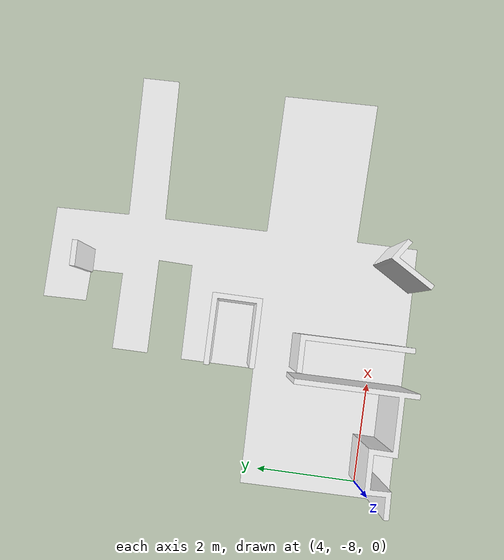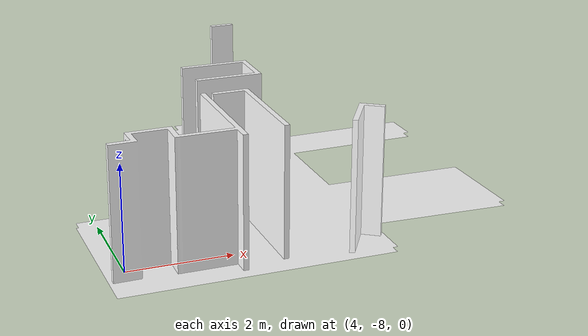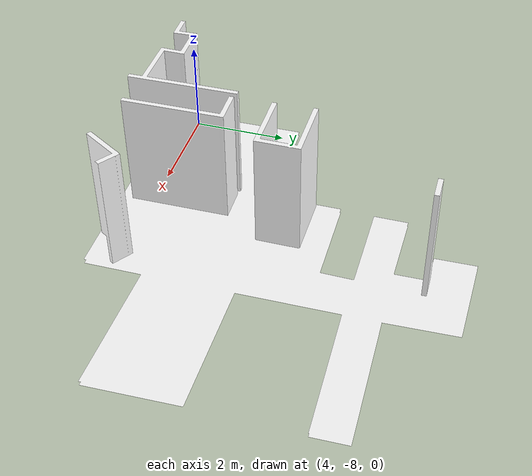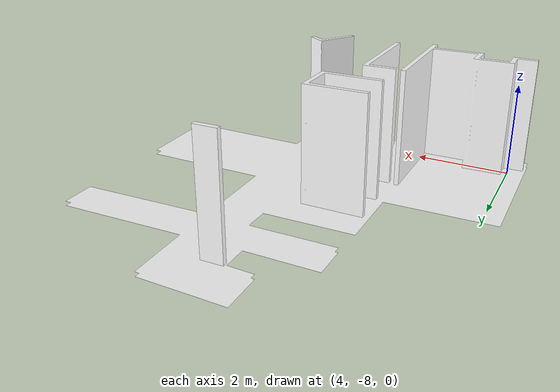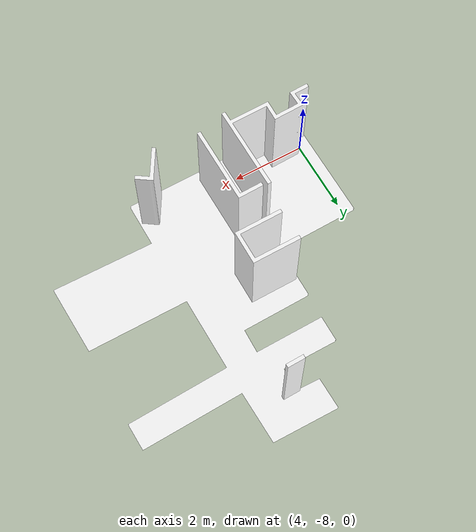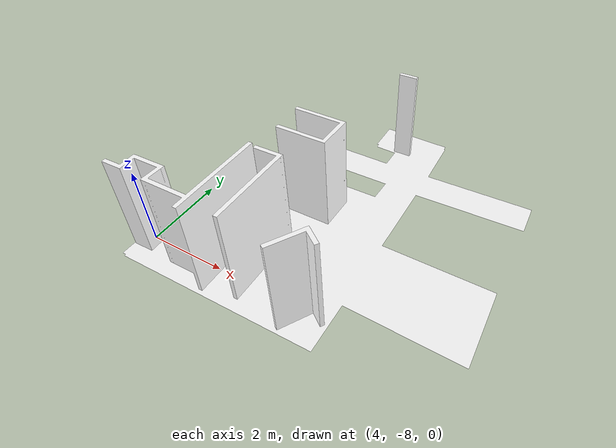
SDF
<sdf version="1.7">
  <world name="kachaka-youtalk">
    <scene>
      <ambient>0.8 0.8 0.8 1.0</ambient>
      <background>0 0 0</background>
      <grid>false</grid>
    </scene>
    <gui>
      <camera name="gui_camera">
        <pose>7.69876620071453 -24.95337946478548 10 0 0.6 1.57</pose>
      </camera>
      <plugin name="toggle_charging" filename="libtoggle_charging.so" />
      <plugin name="toggle_floors" filename="libtoggle_floors.so">
        <floor name="youtalk" model_name="kachaka-youtalk_youtalk" />
      </plugin>
    </gui>
    <include>
      <name>kachaka-youtalk_youtalk</name>
      <uri>model://kachaka-youtalk_youtalk</uri>
      <pose>0 0 0.0 0 0 0</pose>
    </include>
    <rmf_charger_waypoints name="charger_waypoints">
      <rmf_vertex name="Charger" x="7.672877544187198" y="-2.395753616723083" level="youtalk" />
    </rmf_charger_waypoints>
  </world>
</sdf>

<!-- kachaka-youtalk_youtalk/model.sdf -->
<sdf version="1.7">
  <model name="kachaka-youtalk_youtalk">
    <static>true</static>
    <link name="floor_1">
      <visual name="visual">
        <geometry>
          <mesh>
            <uri>model://kachaka-youtalk_youtalk/meshes/floor_1.obj</uri>
          </mesh>
        </geometry>
        <material>
          <diffuse>1.0 1.0 1.0</diffuse>
          <specular>0.1 0.1 0.1</specular>
          <pbr>
            <metal>
              <metalness>0.0</metalness>
              <albedo_map>model://kachaka-youtalk_youtalk/meshes/blue_linoleum.png</albedo_map>
            </metal>
          </pbr>
          <script>
            <uri>model://kachaka-youtalk_youtalk/meshes/</uri>
            <name>floor_1_Diffuse</name>
          </script>
        </material>
      </visual>
      <collision name="collision">
        <geometry>
          <mesh>
            <uri>model://kachaka-youtalk_youtalk/meshes/floor_1.obj</uri>
          </mesh>
        </geometry>
        <surface>
          <contact>
            <collide_bitmask>0x01</collide_bitmask>
          </contact>
        </surface>
      </collision>
    </link>
    <link name="wall_1">
      <visual name="wall_1">
        <geometry>
          <mesh>
            <uri>model://kachaka-youtalk_youtalk/meshes/wall_1.obj</uri>
          </mesh>
        </geometry>
        <transparency>0.0</transparency>
        <material>
          <diffuse>1.0 1.0 1.0</diffuse>
          <specular>0.1 0.1 0.1</specular>
          <pbr>
            <metal>
              <metalness>0.0</metalness>
              <albedo_map>model://kachaka-youtalk_youtalk/meshes/default.png</albedo_map>
            </metal>
          </pbr>
          <script>
            <uri>model://kachaka-youtalk_youtalk/meshes/</uri>
            <name>wall_1_Diffuse</name>
          </script>
        </material>
      </visual>
      <collision name="collision">
        <geometry>
          <mesh>
            <uri>model://kachaka-youtalk_youtalk/meshes/wall_1.obj</uri>
          </mesh>
        </geometry>
        <surface>
          <contact>
            <collide_bitmask>0x01</collide_bitmask>
          </contact>
        </surface>
      </collision>
      <pose>3.71690883002907 -8.655702167943515 0 0 0 0</pose>
    </link>
  </model>
</sdf>
